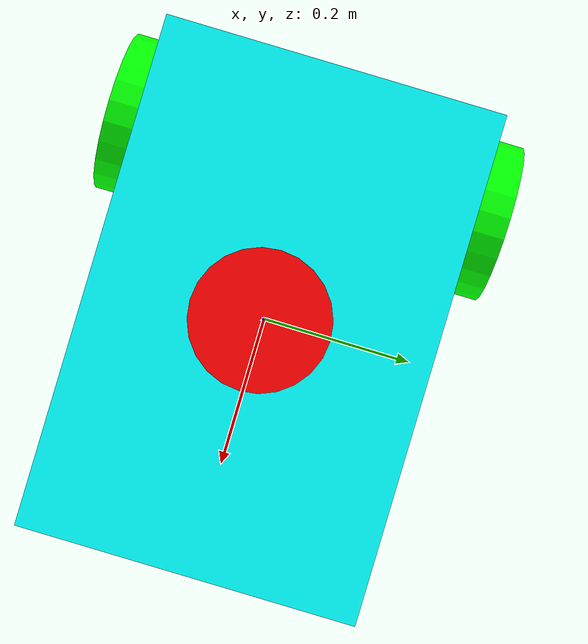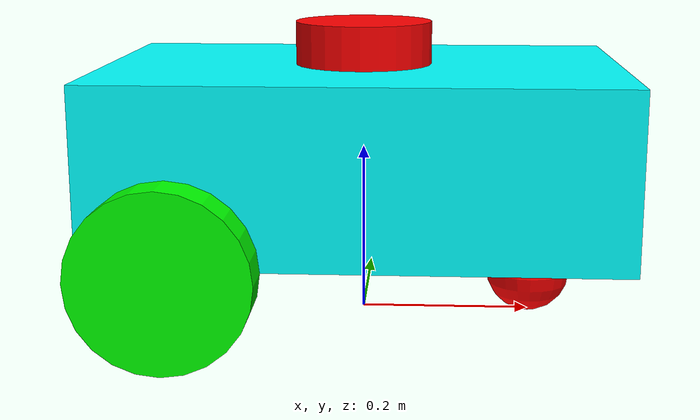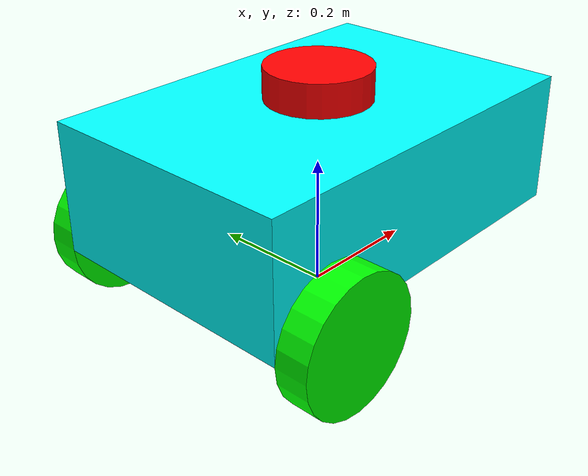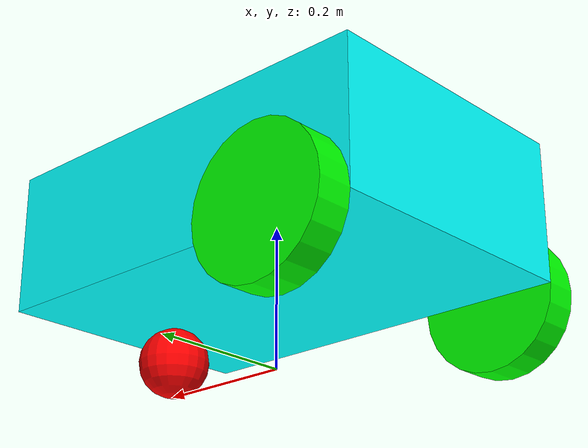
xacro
<?xml version="1.0"?>
<robot name="my_robot" xmlns:xacro="http://www.ros.org/wiki/xacro">

    <!-- çağırılmasa sırası önemli macro var ise daha önce çağrılması daha doğru olur-->
    <xacro:include filename="properties.xacro" />
    <xacro:include filename="properties_gazebo.xacro" />
    <xacro:include filename="my_robot.xacro" />

    <xacro:include filename="camera.xacro"/>
    <xacro:include filename="lidar.xacro"/>

    <!--gazebo ekranına kamera lidar eklemek için bu kısım kullanılır -->
    <gazebo reference="camera_link">
        <material>Gazebo/Red</material><!--gazbodaki rengi-->
        <sensor name="camera_sensor" type="camera"><!--kamera olduğu type kısmında belirtildi lidar için ray-->
            <pose>0 0 0 0 0</pose><!--x y z roll pitch yaw-->

            <visualize>true</visualize><!--gazebo arayüzünde kamera görüntüsünün gösterilmesini sağlar-->
            <update_rate>10.0</update_rate><!--hz saniyede güncelleme sayısı(10fps-->

            <!--ros entegrasyon eklentisi-->
            <plugin name="camera_controller" filename="libgazebo_ros_camera.so">
                <frame_name>camera_link</frame_name>
            </plugin>
        </sensor>
    </gazebo>

</robot>

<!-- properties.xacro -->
<robot name="my_robot" xmlns:xacro="http://www.ros.org/wiki/xacro">
    <!-- renkler-->
    <material name="cyan">
        <color rgba="0 1 1 1"/>
    </material>

    <material name="green">
        <color rgba="0 1 0 1"/>
    </material>

    <material name="red">
        <color rgba="1 0 0 1"/>
    </material>

    <xacro:property name="base_width" value="0.6"/>
    <xacro:property name="base_length" value="0.4"/>
    <xacro:property name="base_height" value="0.2"/>

    <xacro:property name="wheel_radius" value="0.1"/>
    <xacro:property name="wheel_length" value="0.05"/>
    <xacro:property name="caster_wheel_radius" value="0.05"/>

    <!--eylemsizlik momenti-->
    <xacro:macro name="box_inertia" params = "m l w h xyz rpy">
        <inertial>
            <origin xyz="${xyz}" rpy="${rpy}"/>
            <mass value = "${m}"/>
            <inertia ixx = "${(m / 12) * (h*h + l*l)}" ixy="0" ixz="0"
                     iyy = "${(m / 12) * (h*h + l*l)}" iyz="0"
                     izz = "${(m / 12) * (h*h + l*l)}" />
        </inertial>
    </xacro:macro>

    <xacro:macro name="cylinder_inertia" params = "m r h xyz rpy">
        <inertial>
            <origin xyz="${xyz}" rpy="${rpy}"/>
            <mass value = "${m}"/>
            <inertia ixx = "${(m / 12) * (3*r*r + h*h)}" ixy="0" ixz="0"
                     iyy = "${(m / 12) * (3*r*r + h*h)}" iyz="0"
                     izz = "${(m / 2) * (r*r)}" />
        </inertial>
    </xacro:macro>

    <xacro:macro name="sphere_inertia" params = "m r xyz rpy">
        <inertial>
            <origin xyz="${xyz}" rpy="${rpy}"/>
            <mass value = "${m}"/>
            <inertia ixx = "${(2 / 5) * m * r * r}" ixy="0" ixz="0"
                     iyy = "${(2 / 5) * m * r * r}" iyz="0"
                     izz = "${(2 / 5) * m * r * r}" />
        </inertial>
    </xacro:macro>
</robot>

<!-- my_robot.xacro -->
<robot name="my_robot" xmlns:xacro="http://www.ros.org/wiki/xacro">

    <link name="base_footprint"/> <!--robotun zemin düzlemine göre pozisyonu (referans noktası)-->
    <!--ana gövde düğüm-->
    <link name="base_link">
        <visual>
            <geometry>
                <box size="${base_width} ${base_length} ${base_height}"/>
            </geometry>
            <origin xyz="0 0 0" rpy="0 0 0"/>
            <material name="cyan"/>
        </visual>
        <collision>
            <geometry>
                <box size="${base_width} ${base_length} ${base_height}"/>
            </geometry>
            <origin xyz="0 0 0" rpy="0 0 0"/>
        </collision>
        <!--eylemsizlik momentinden kaynaklı oarak oluşan gazeboda robotun geri gitmesini eylemsizlik
        momentlerine kat sayıları ekleyerek düzeltebiliriz 2*-->
        <xacro:box_inertia m ="5.0" l = "${2*base_length}"
                                    w = "${2*base_width}"
                                    h = "${2*base_height}"
                                    xyz = "0 0 0"
                                    rpy = "0 0 0"
                                    />
    </link>

    <xacro:macro name="wheel_link" params="prefix">
        <link name="${prefix}_wheel_link">
            <visual>
                <geometry>
                    <cylinder radius="${wheel_radius}" length="${wheel_length}"/>
                </geometry>
                <origin xyz="0 0 0" rpy="${pi/2} 0 0"/>
                <material name="green"/>
            </visual>nda material(renk gibi) ayarları
            <xacro:cylinder_inertia m="1.0" r = "${2*wheel_radius}"
                                            h = "${2*wheel_length}"
                                            xyz = "0 0 0"
                                            rpy = "${pi/2} 0 0"
                                            />
            <collision>
                <geometry>
                    <cylinder radius="${wheel_radius}" length="${wheel_length}"/>
                </geometry>
                <origin xyz="0 0 0" rpy="${pi/2} 0 0"/>
            </collision>
        </link>
    </xacro:macro>

    <xacro:wheel_link prefix="right"/>
    <xacro:wheel_link prefix="left"/>

    <link name="caster_wheel_link">
        <visual>
            <geometry>
                <sphere radius="${caster_wheel_radius}"/>
            </geometry>
            <origin xyz="0 0 0" rpy="0 0 0"/>
            <material name="red"/>
        </visual>
        <!--eylemsizlik momenti için-->
        <collision>
            <geometry>
                <sphere radius="${caster_wheel_radius}"/>
            </geometry>
            <origin xyz="0 0 0" rpy="0 0 0"/>
        </collision>
        <xacro:sphere_inertia m="0.5" r = "${2*caster_wheel_radius}"
                                        xyz = "0 0 0"
                                        rpy = "0 0 0"
                                        />
    </link>

    <!--robotun zemine göre konumlanması için-->
    <joint name="base_joint" type="fixed">
        <parent link="base_footprint"/>
        <child link="base_link"/>
        <origin xyz="0 0 ${(base_height / 2) + wheel_radius}" rpy="0 0 0" />
    </joint>

    <!--sağ tekerlek eklemi ve konumlandırılması-->
    <joint name="base_right_wheel_joint" type="continuous">
        <parent link="base_link"/>
        <child link="right_wheel_link"/>
        <origin xyz="${(- (base_width / 2)) + (wheel_radius)}
                    ${-((base_length / 2) + (wheel_length /2))}
                    ${- wheel_radius}" rpy="0 0 0" />
        <axis xyz="0 1 0"/><!--dönüş ekseni verildi-->
    </joint>

    <!--sol tekerlek eklemi ve konumlandırılması-->
    <joint name="base_left_wheel_joint" type="continuous">
        <parent link="base_link"/>
        <child link="left_wheel_link"/>
        <origin xyz="
                    ${(- (base_width / 2)) + (wheel_radius)}
                    ${((base_length / 2) + (wheel_length /2))}
                    ${- wheel_radius}" rpy="0 0 0" />
        <axis xyz="0 1 0"/><!--dönüş ekseni verildi-->
    </joint>

    <!--sarhoş tekerlek eklem ayarı ve konumlandırılması-->
    <joint name="base_caster_wheel_joint" type="fixed">
        <parent link="base_link"/>
        <child link="caster_wheel_link"/>
        <origin xyz="0.2 0 ${- ((base_height / 2) + caster_wheel_radius)}" rpy="0 0 0" />
    </joint>

</robot>

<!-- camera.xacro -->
<robot name="my_robot" xmlns:xacro="http://www.ros.org/wiki/xacro">

    <!--özellik değişkenleri-->
    <xacro:property name="camera_width" value="0.1"/>
    <xacro:property name="camera_length" value="0.01"/>
    <xacro:property name="camera_height" value="0.05"/>

    <!--camera linki-->
    <link name="camera_link">
        <visual>
            <geometry>
                <box size="${camera_length} ${camera_width} ${camera_height}"/>
            </geometry>
            <origin xyz="0 0 0" rpy="0 0 0"/>
            <material name="cyan"/>
        </visual>
        <collision>
            <geometry>
                <box size="${camera_length} ${camera_width} ${camera_height}"/>
            </geometry>
            <origin xyz="0 0 0" rpy="0 0 0"/>
        </collision>
        <xacro:box_inertia m ="0.5" l = "${2*camera_length}"
                                    w = "${2*camera_width}"
                                    h = "${2*camera_height}"
                                    xyz = "0 0 0"
                                    rpy = "0 0 0"
                                    />
    </link>

    <joint name="base_camera_joint" type="fixed">
        <parent link="base_link"/>
        <child link="camera_link"/>
        <origin xyz="0.3 0 0" rpy="0 0 0" />
    </joint>

</robot>

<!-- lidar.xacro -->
<robot name="my_robot" xmlns:xacro="http://www.ros.org/wiki/xacro">

    <!--inf değer sonsuz yani engel yok demektir-->
    <!--geometrik özellikler-->
    <xacro:property name="lidar_radius" value="0.08"/>
    <xacro:property name="lidar_length" value="0.05"/>

    <link name="lidar_link">
        <visual>
            <geometry>
                <cylinder radius="${lidar_radius}" length="${lidar_length}"/>
            </geometry>
            <origin xyz="0 0 0" rpy="0 0 0"/>
            <material name="red"/>
        </visual>
        <xacro:cylinder_inertia m="0.2" r = "${2*lidar_radius}"
                                        h = "${2*lidar_length}"
                                        xyz = "0 0 0"
                                        rpy = "0 0 0"
                                        />
        <collision>
            <geometry>
                <cylinder radius="${lidar_radius}" length="${lidar_length}"/>
            </geometry>
            <origin xyz="0 0 0" rpy="${pi/2} 0 0"/>
        </collision>
    </link>

    <!--lidarı eklem ayarı ve robotta konumlandırılması-->
    <joint name="base_lidar_joint" type="fixed">
        <parent link="base_link"/>
        <child link="lidar_link"/>
        <origin xyz="0 0 ${(base_height / 2) + (lidar_length / 2)}" rpy="0 0 0" />
    </joint>

    <!--gazeboda lidarın özellikleri-->
    <gazebo reference="lidar_link">
        <material>Gazebo/Blue</material>
        <sensor name="lidar_sensor" type="ray"><!--lidar olduğu type kısmında belirtildi-->
            <pose>0 0 0 0 0</pose>
            <visualize>true</visualize>
            <update_rate>10.0</update_rate>
            <!--laddar özel değerler-->
            <ray>
                <scan>

                    <horizontal>
                        <samples>720</samples><!--720 nokta alır-->
                        <resolution>1</resolution><!--1 derece baına 2 örnek-->
                         <!--360 derece tarama yapar-->
                        <min_angle>-3.14</min_angle>
                        <max_angle>3.14</max_angle>
                    </horizontal>
                </scan>
                <!--lidar menzil ve hassasiywt-->
                <range>
                    <min>0.1</min> <!-- 10 cm -->
                    <max>30.0</max>
                    <resolution>0.01</resolution><!-- 1 cm -->
                </range>
            </ray>
            <!--ros lidar tarama mesajı-->
            <plugin name="lidar" filename="libgazebo_ros_ray_sensor.so">
                <output_type>sensor_msgs/LaserScan</output_type>
            </plugin>
        </sensor>
    </gazebo>

</robot>
